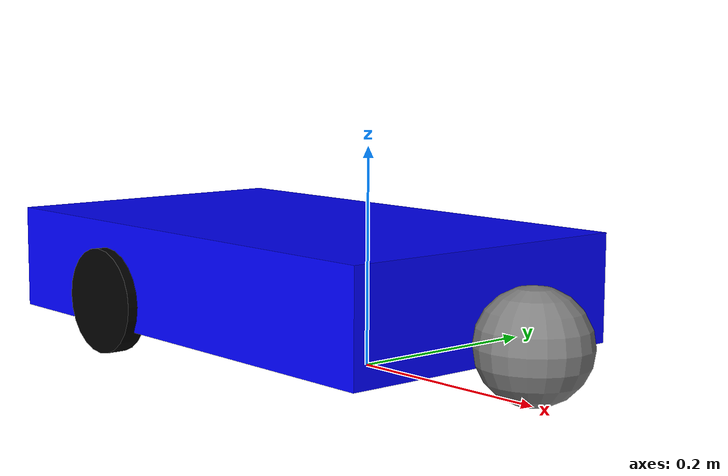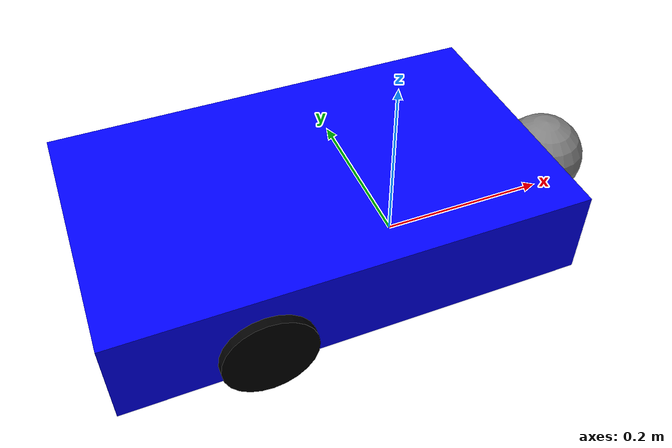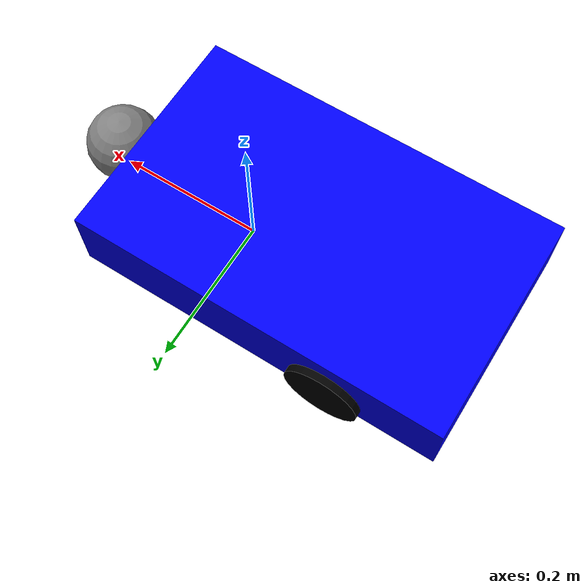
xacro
<?xml version="1.0"?>
    <robot xmlns:xacro="http://wiki.ros.org/xacro">
        <xacro:include filename="inertial_macros.xacro"/>
        <!-- Include camera.xacro -->

        <!-- Colors -->
        <material name="blue">
            <color rgba="0.0 0.0 1.0 1.0"/> <!-- RGBA for blue -->
        </material>
        <material name="black">
            <color rgba="0.0 0.0 0.0 1.0"/> <!-- RGBA for black -->
        </material>
        <material name="gray">
            <color rgba="0.5 0.5 0.5 1.0"/> <!-- RGBA for gray -->
        </material>

        <!-- Base Link -->

        <link name="base_link">

        </link>

        <!-- CHASSIS LINK -->

        <link name="chassis">
            <visual>
                <origin xyz="0 0 0.075" rpy="0 0 0"/>
                <geometry>
                    <box size="0.5 0.3 0.1"/>
                </geometry>
                <material name="blue"/>
            </visual>
            <collision>
                <origin xyz="0 0 0.075" rpy="0 0 0"/>
                <geometry>
                    <box size="0.5 0.3 0.1"/>
                </geometry>
            </collision>
            <inertial>
                <mass value="5.0"/>
                <inertia ixx="0.1" ixy="0.0" ixz="0.0" iyy="0.1" iyz="0.0" izz="0.1"/>
                <origin xyz="0 0 0" rpy="0 0 0"/>
            </inertial>
        </link>

        <!-- Left Wheel -->
        <link name="left_wheel">
            <visual>
                <geometry>
                    <cylinder radius="0.05" length="0.02"/>
                </geometry>
                <material name="black"/>
            </visual>
            <collision>
                <geometry>
                    <cylinder radius="0.05" length="0.02"/>
                </geometry>
            </collision>
            <inertial>
                <mass value="0.5"/>
                <inertia ixx="0.01" ixy="0.0" ixz="0.0" iyy="0.01" iyz="0.0" izz="0.01"/>
                <origin xyz="0 0 0" rpy="0 0 0"/>
            </inertial>
        </link>

        <!-- Right Wheel -->
        <link name="right_wheel">
            <visual>
                <geometry>
                    <cylinder radius="0.05" length="0.02"/>
                </geometry>
                <material name="black"/>
            </visual>
            <collision>
                <geometry>
                    <cylinder radius="0.05" length="0.02"/>
                </geometry>
            </collision>
            <inertial>
                <mass value="0.5"/>
                <inertia ixx="0.01" ixy="0.0" ixz="0.0" iyy="0.01" iyz="0.0" izz="0.01"/>
                <origin xyz="0 0 0" rpy="0 0 0"/>
            </inertial>
        </link>

        <!-- Caster Wheel -->
        <link name="caster_wheel">
            <visual>
                <geometry>
                    <sphere radius="0.05"/>
                </geometry>
                <material name="gray"/>
            </visual>
            <!-- add inertial for caster wheel -->
            <inertial>
                <mass value="0.5"/>
                <inertia ixx="0.01" ixy="0.0" ixz="0.0" iyy="0.002" iyz="0.0" izz="0.002"/>
                <origin xyz="0 0 0" rpy="0 0 0"/>
            </inertial>
        </link>

        <!-- Joints -->
        <joint name="chassis_joint" type="fixed">
            <parent link="base_link"/>
            <child link="chassis"/>
            <origin xyz="-0.1 0 0"/> <!-- Offset in x direction-->
        </joint>
        <joint name="left_wheel_joint" type="continuous">
            <parent link="base_link"/>
            <child link="left_wheel"/>
            <origin xyz="-0.2 0.15 0.05" rpy="1.57 0 0"/>
            <!-- in controls we will use this y x 2 as the separation i.e 0.3-->
            <axis xyz="0 1 0"/>
        </joint>

        <joint name="right_wheel_joint" type="continuous">
            <parent link="base_link"/>
            <child link="right_wheel"/>
            <origin xyz="-0.2 -0.15 0.05" rpy="1.57 0 0"/>
            <axis xyz="0 1 0"/>
        </joint>

        <joint name="caster_wheel_joint" type="fixed">
            <parent link="base_link"/>
            <child link="caster_wheel"/>
            <origin xyz="0.2 0 0.05"/>
            <axis xyz="0 1 0"/>
        </joint>

        <!-- Gazebo reference: -->

        <gazebo reference="caster_wheel">
            <material>Gazebo/Gray</material>
        </gazebo>

    </robot>
